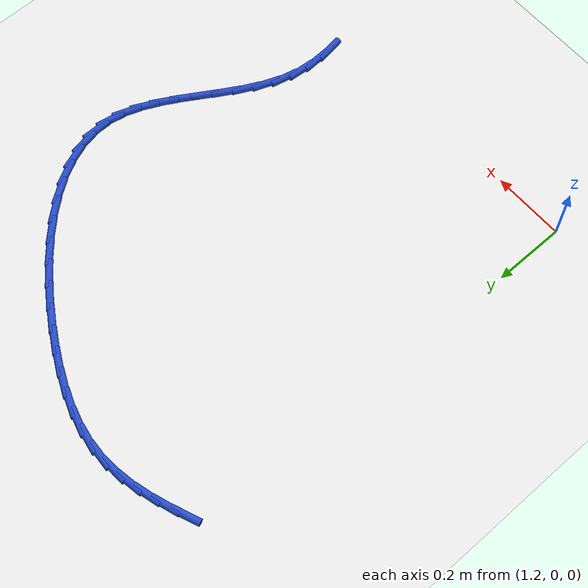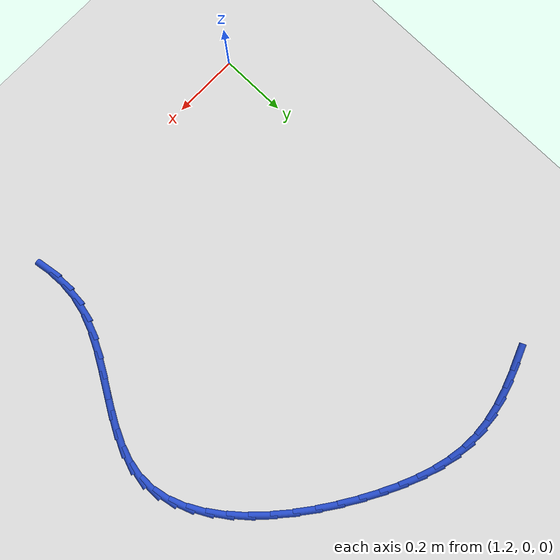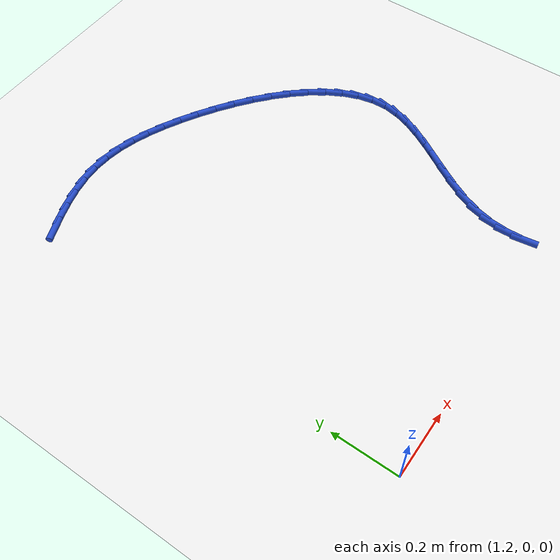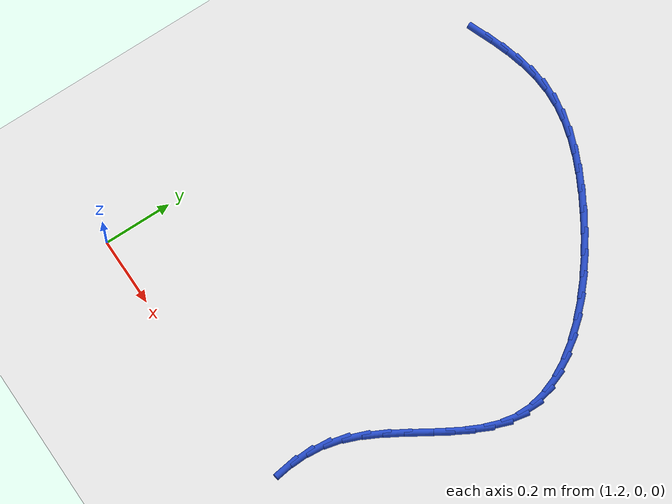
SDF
<sdf version="1.6">
 <world name="default">
  <model name="ground_plane">
   <static>1</static>
   <link name="link">
    <collision name="collision">
     <geometry><plane><normal>0 0 1</normal><size>100 100</size></plane></geometry>
     <surface><friction><ode><mu>100</mu><mu2>50</mu2></ode></friction></surface>
    </collision>
    <visual name="visual">
     <cast_shadows>0</cast_shadows>
     <geometry><plane><normal>0 0 1</normal><size>100 100</size></plane></geometry>
     <material>
      <script><uri>file://media/materials/scripts/gazebo.material</uri><name>Gazebo/WhiteGlow</name></script>
     </material>
    </visual>
   </link>
  </model>
  <model name="line">
   <link name="link_36">
    <pose>1.2572662843656537 1.18609397323883 0.01 0 1.57 0.37760422155665735</pose>
    <collision name="collision">
     <geometry><cylinder><radius>0.01</radius><length>0.08</length></cylinder></geometry>
    </collision>
    <visual name="visual">
     <material>
      <script><name>Gazebo/Blue</name><uri>file://media/materials/scripts/gazebo.material</uri></script>
     </material>
     <geometry><cylinder><radius>0.01</radius><length>0.08</length></cylinder></geometry>
    </visual>
   </link>
   <link name="link_37">
    <pose>1.3067236135898486 1.2057105993985886 0.01 0 1.57 0.32775156799154864</pose>
    <collision name="collision">
     <geometry><cylinder><radius>0.01</radius><length>0.08</length></cylinder></geometry>
    </collision>
    <visual name="visual">
     <material>
      <script><name>Gazebo/Blue</name><uri>file://media/materials/scripts/gazebo.material</uri></script>
     </material>
     <geometry><cylinder><radius>0.01</radius><length>0.08</length></cylinder></geometry>
    </visual>
   </link>
   <link name="link_38">
    <pose>1.3560260150493069 1.222474134287575 0.01 0 1.57 0.25872539393410193</pose>
    <collision name="collision">
     <geometry><cylinder><radius>0.01</radius><length>0.08</length></cylinder></geometry>
    </collision>
    <visual name="visual">
     <material>
      <script><name>Gazebo/Blue</name><uri>file://media/materials/scripts/gazebo.material</uri></script>
     </material>
     <geometry><cylinder><radius>0.01</radius><length>0.08</length></cylinder></geometry>
    </visual>
   </link>
   <link name="link_39">
    <pose>1.4052984876984786 1.2355144487831842 0.01 0 1.57 0.16946257647083465</pose>
    <collision name="collision">
     <geometry><cylinder><radius>0.01</radius><length>0.08</length></cylinder></geometry>
    </collision>
    <visual name="visual">
     <material>
      <script><name>Gazebo/Blue</name><uri>file://media/materials/scripts/gazebo.material</uri></script>
     </material>
     <geometry><cylinder><radius>0.01</radius><length>0.08</length></cylinder></geometry>
    </visual>
   </link>
   <link name="link_40">
    <pose>1.4546660304918162 1.2439614137628132 0.01 0 1.57 0.060093519521581526</pose>
    <collision name="collision">
     <geometry><cylinder><radius>0.01</radius><length>0.08</length></cylinder></geometry>
    </collision>
    <visual name="visual">
     <material>
      <script><name>Gazebo/Blue</name><uri>file://media/materials/scripts/gazebo.material</uri></script>
     </material>
     <geometry><cylinder><radius>0.01</radius><length>0.08</length></cylinder></geometry>
    </visual>
   </link>
   <link name="link_41">
    <pose>1.50425364238377 1.2469449001038577 0.01 0 1.57 -0.06376951316720172</pose>
    <collision name="collision">
     <geometry><cylinder><radius>0.01</radius><length>0.08</length></cylinder></geometry>
    </collision>
    <visual name="visual">
     <material>
      <script><name>Gazebo/Blue</name><uri>file://media/materials/scripts/gazebo.material</uri></script>
     </material>
     <geometry><cylinder><radius>0.01</radius><length>0.08</length></cylinder></geometry>
    </visual>
   </link>
   <link name="link_42">
    <pose>1.5541730609378048 1.2437572409872852 0.01 0 1.57 -0.17959205626005043</pose>
    <collision name="collision">
     <geometry><cylinder><radius>0.01</radius><length>0.08</length></cylinder></geometry>
    </collision>
    <visual name="visual">
     <material>
      <script><name>Gazebo/Blue</name><uri>file://media/materials/scripts/gazebo.material</uri></script>
     </material>
     <geometry><cylinder><radius>0.01</radius><length>0.08</length></cylinder></geometry>
    </visual>
   </link>
   <link name="link_43">
    <pose>1.6044595340750905 1.2346278269133066 0.01 0 1.57 -0.27888068944598643</pose>
    <collision name="collision">
     <geometry><cylinder><radius>0.01</radius><length>0.08</length></cylinder></geometry>
    </collision>
    <visual name="visual">
     <material>
      <script><name>Gazebo/Blue</name><uri>file://media/materials/scripts/gazebo.material</uri></script>
     </material>
     <geometry><cylinder><radius>0.01</radius><length>0.08</length></cylinder></geometry>
    </visual>
   </link>
   <link name="link_44">
    <pose>1.6551209444400943 1.220121294201809 0.01 0 1.57 -0.3618075823167382</pose>
    <collision name="collision">
     <geometry><cylinder><radius>0.01</radius><length>0.08</length></cylinder></geometry>
    </collision>
    <visual name="visual">
     <material>
      <script><name>Gazebo/Blue</name><uri>file://media/materials/scripts/gazebo.material</uri></script>
     </material>
     <geometry><cylinder><radius>0.01</radius><length>0.08</length></cylinder></geometry>
    </visual>
   </link>
   <link name="link_45">
    <pose>1.7061651401035685 1.2008027027274193 0.01 0 1.57 -0.4296223871402558</pose>
    <collision name="collision">
     <geometry><cylinder><radius>0.01</radius><length>0.08</length></cylinder></geometry>
    </collision>
    <visual name="visual">
     <material>
      <script><name>Gazebo/Blue</name><uri>file://media/materials/scripts/gazebo.material</uri></script>
     </material>
     <geometry><cylinder><radius>0.01</radius><length>0.08</length></cylinder></geometry>
    </visual>
   </link>
   <link name="link_46">
    <pose>1.7575999691362678 1.1772371123647654 0.01 0 1.57 -0.4839768215693797</pose>
    <collision name="collision">
     <geometry><cylinder><radius>0.01</radius><length>0.08</length></cylinder></geometry>
    </collision>
    <visual name="visual">
     <material>
      <script><name>Gazebo/Blue</name><uri>file://media/materials/scripts/gazebo.material</uri></script>
     </material>
     <geometry><cylinder><radius>0.01</radius><length>0.08</length></cylinder></geometry>
    </visual>
   </link>
   <link name="link_47">
    <pose>1.809433279608945 1.1499895829884748 0.01 0 1.57 -0.528381747543479</pose>
    <collision name="collision">
     <geometry><cylinder><radius>0.01</radius><length>0.08</length></cylinder></geometry>
    </collision>
    <visual name="visual">
     <material>
      <script><name>Gazebo/Blue</name><uri>file://media/materials/scripts/gazebo.material</uri></script>
     </material>
     <geometry><cylinder><radius>0.01</radius><length>0.08</length></cylinder></geometry>
    </visual>
   </link>
   <link name="link_48">
    <pose>1.8615339503997963 1.119576062675035 0.01 0 1.57 -0.5721277697215879</pose>
    <collision name="collision">
     <geometry><cylinder><radius>0.01</radius><length>0.08</length></cylinder></geometry>
    </collision>
    <visual name="visual">
     <material>
      <script><name>Gazebo/Blue</name><uri>file://media/materials/scripts/gazebo.material</uri></script>
     </material>
     <geometry><cylinder><radius>0.01</radius><length>0.08</length></cylinder></geometry>
    </visual>
   </link>
   <link name="link_49">
    <pose>1.91319366532953 1.0863085184125463 0.01 0 1.57 -0.6188107056609943</pose>
    <collision name="collision">
     <geometry><cylinder><radius>0.01</radius><length>0.08</length></cylinder></geometry>
    </collision>
    <visual name="visual">
     <material>
      <script><name>Gazebo/Blue</name><uri>file://media/materials/scripts/gazebo.material</uri></script>
     </material>
     <geometry><cylinder><radius>0.01</radius><length>0.08</length></cylinder></geometry>
    </visual>
   </link>
   <link name="link_50">
    <pose>1.9635542770698824 1.0504459667688884 0.01 0 1.57 -0.670117612487911</pose>
    <collision name="collision">
     <geometry><cylinder><radius>0.01</radius><length>0.08</length></cylinder></geometry>
    </collision>
    <visual name="visual">
     <material>
      <script><name>Gazebo/Blue</name><uri>file://media/materials/scripts/gazebo.material</uri></script>
     </material>
     <geometry><cylinder><radius>0.01</radius><length>0.08</length></cylinder></geometry>
    </visual>
   </link>
   <link name="link_51">
    <pose>2.0117576380077455 1.0122474242112784 0.01 0 1.57 -0.727981286906242</pose>
    <collision name="collision">
     <geometry><cylinder><radius>0.01</radius><length>0.08</length></cylinder></geometry>
    </collision>
    <visual name="visual">
     <material>
      <script><name>Gazebo/Blue</name><uri>file://media/materials/scripts/gazebo.material</uri></script>
     </material>
     <geometry><cylinder><radius>0.01</radius><length>0.08</length></cylinder></geometry>
    </visual>
   </link>
   <link name="link_52">
    <pose>2.056945600530009 0.9719719072069326 0.01 0 1.57 -0.7947382368862548</pose>
    <collision name="collision">
     <geometry><cylinder><radius>0.01</radius><length>0.08</length></cylinder></geometry>
    </collision>
    <visual name="visual">
     <material>
      <script><name>Gazebo/Blue</name><uri>file://media/materials/scripts/gazebo.material</uri></script>
     </material>
     <geometry><cylinder><radius>0.01</radius><length>0.08</length></cylinder></geometry>
    </visual>
   </link>
   <link name="link_53">
    <pose>2.098260017023563 0.9298784322230669 0.01 0 1.57 -0.8732833800559324</pose>
    <collision name="collision">
     <geometry><cylinder><radius>0.01</radius><length>0.08</length></cylinder></geometry>
    </collision>
    <visual name="visual">
     <material>
      <script><name>Gazebo/Blue</name><uri>file://media/materials/scripts/gazebo.material</uri></script>
     </material>
     <geometry><cylinder><radius>0.01</radius><length>0.08</length></cylinder></geometry>
    </visual>
   </link>
   <link name="link_54">
    <pose>2.1348427398753014 0.8862260157268989 0.01 0 1.57 -0.9671786636533485</pose>
    <collision name="collision">
     <geometry><cylinder><radius>0.01</radius><length>0.08</length></cylinder></geometry>
    </collision>
    <visual name="visual">
     <material>
      <script><name>Gazebo/Blue</name><uri>file://media/materials/scripts/gazebo.material</uri></script>
     </material>
     <geometry><cylinder><radius>0.01</radius><length>0.08</length></cylinder></geometry>
    </visual>
   </link>
   <link name="link_55">
    <pose>2.1658356214721133 0.8412736741856432 0.01 0 1.57 -1.0805824273977227</pose>
    <collision name="collision">
     <geometry><cylinder><radius>0.01</radius><length>0.08</length></cylinder></geometry>
    </collision>
    <visual name="visual">
     <material>
      <script><name>Gazebo/Blue</name><uri>file://media/materials/scripts/gazebo.material</uri></script>
     </material>
     <geometry><cylinder><radius>0.01</radius><length>0.08</length></cylinder></geometry>
    </visual>
   </link>
   <link name="link_56">
    <pose>2.1903805142008905 0.7952804240665182 0.01 0 1.57 -1.2176965936084658</pose>
    <collision name="collision">
     <geometry><cylinder><radius>0.01</radius><length>0.08</length></cylinder></geometry>
    </collision>
    <visual name="visual">
     <material>
      <script><name>Gazebo/Blue</name><uri>file://media/materials/scripts/gazebo.material</uri></script>
     </material>
     <geometry><cylinder><radius>0.01</radius><length>0.08</length></cylinder></geometry>
    </visual>
   </link>
   <link name="link_57">
    <pose>2.2076192704485234 0.7485052818367388 0.01 0 1.57 -1.3812423611241642</pose>
    <collision name="collision">
     <geometry><cylinder><radius>0.01</radius><length>0.08</length></cylinder></geometry>
    </collision>
    <visual name="visual">
     <material>
      <script><name>Gazebo/Blue</name><uri>file://media/materials/scripts/gazebo.material</uri></script>
     </material>
     <geometry><cylinder><radius>0.01</radius><length>0.08</length></cylinder></geometry>
    </visual>
   </link>
   <link name="link_58">
    <pose>2.2166937426019038 0.7012072639635223 0.01 0 1.57 -1.5697021642328135</pose>
    <collision name="collision">
     <geometry><cylinder><radius>0.01</radius><length>0.08</length></cylinder></geometry>
    </collision>
    <visual name="visual">
     <material>
      <script><name>Gazebo/Blue</name><uri>file://media/materials/scripts/gazebo.material</uri></script>
     </material>
     <geometry><cylinder><radius>0.01</radius><length>0.08</length></cylinder></geometry>
    </visual>
   </link>
   <link name="link_59">
    <pose>2.216745783047921 0.6536453869140842 0.01 0 1.57 1.3765695246528835</pose>
    <collision name="collision">
     <geometry><cylinder><radius>0.01</radius><length>0.08</length></cylinder></geometry>
    </collision>
    <visual name="visual">
     <material>
      <script><name>Gazebo/Blue</name><uri>file://media/materials/scripts/gazebo.material</uri></script>
     </material>
     <geometry><cylinder><radius>0.01</radius><length>0.08</length></cylinder></geometry>
    </visual>
   </link>
   <link name="link_60">
    <pose>2.207378923476059 0.6060269486554369 0.01 0 1.57 1.2223561097141546</pose>
    <collision name="collision">
     <geometry><cylinder><radius>0.01</radius><length>0.08</length></cylinder></geometry>
    </collision>
    <visual name="visual">
     <material>
      <script><name>Gazebo/Blue</name><uri>file://media/materials/scripts/gazebo.material</uri></script>
     </material>
     <geometry><cylinder><radius>0.01</radius><length>0.08</length></cylinder></geometry>
    </visual>
   </link>
   <link name="link_61">
    <pose>2.1900598966775893 0.5583505265859571 0.01 0 1.57 1.1165627376637237</pose>
    <collision name="collision">
     <geometry><cylinder><radius>0.01</radius><length>0.08</length></cylinder></geometry>
    </collision>
    <visual name="visual">
     <material>
      <script><name>Gazebo/Blue</name><uri>file://media/materials/scripts/gazebo.material</uri></script>
     </material>
     <geometry><cylinder><radius>0.01</radius><length>0.08</length></cylinder></geometry>
    </visual>
   </link>
   <link name="link_62">
    <pose>2.166725393409376 0.5105620522067429 0.01 0 1.57 1.0514826039585043</pose>
    <collision name="collision">
     <geometry><cylinder><radius>0.01</radius><length>0.08</length></cylinder></geometry>
    </collision>
    <visual name="visual">
     <material>
      <script><name>Gazebo/Blue</name><uri>file://media/materials/scripts/gazebo.material</uri></script>
     </material>
     <geometry><cylinder><radius>0.01</radius><length>0.08</length></cylinder></geometry>
    </visual>
   </link>
   <link name="link_63">
    <pose>2.1393121044403904 0.4626074570175358 0.01 0 1.57 1.0205071304001756</pose>
    <collision name="collision">
     <geometry><cylinder><radius>0.01</radius><length>0.08</length></cylinder></geometry>
    </collision>
    <visual name="visual">
     <material>
      <script><name>Gazebo/Blue</name><uri>file://media/materials/scripts/gazebo.material</uri></script>
     </material>
     <geometry><cylinder><radius>0.01</radius><length>0.08</length></cylinder></geometry>
    </visual>
   </link>
   <link name="link_64">
    <pose>2.109756720539605 0.41443267251807897 0.01 0 1.57 1.0199502787090715</pose>
    <collision name="collision">
     <geometry><cylinder><radius>0.01</radius><length>0.08</length></cylinder></geometry>
    </collision>
    <visual name="visual">
     <material>
      <script><name>Gazebo/Blue</name><uri>file://media/materials/scripts/gazebo.material</uri></script>
     </material>
     <geometry><cylinder><radius>0.01</radius><length>0.08</length></cylinder></geometry>
    </visual>
   </link>
   <link name="link_65">
    <pose>2.079995932475991 0.3659836302081138 0.01 0 1.57 1.0492314926855069</pose>
    <collision name="collision">
     <geometry><cylinder><radius>0.01</radius><length>0.08</length></cylinder></geometry>
    </collision>
    <visual name="visual">
     <material>
      <script><name>Gazebo/Blue</name><uri>file://media/materials/scripts/gazebo.material</uri></script>
     </material>
     <geometry><cylinder><radius>0.01</radius><length>0.08</length></cylinder></geometry>
    </visual>
   </link>
   <link name="link_66">
    <pose>2.0519664310185197 0.31720626158738197 0.01 0 1.57 1.1107084641364842</pose>
    <collision name="collision">
     <geometry><cylinder><radius>0.01</radius><length>0.08</length></cylinder></geometry>
    </collision>
    <visual name="visual">
     <material>
      <script><name>Gazebo/Blue</name><uri>file://media/materials/scripts/gazebo.material</uri></script>
     </material>
     <geometry><cylinder><radius>0.01</radius><length>0.08</length></cylinder></geometry>
    </visual>
   </link>
   <link name="link_67">
    <pose>2.0276049069361632 0.2680464981556266 0.01 0 1.57 1.2092308416880622</pose>
    <collision name="collision">
     <geometry><cylinder><radius>0.01</radius><length>0.08</length></cylinder></geometry>
    </collision>
    <visual name="visual">
     <material>
      <script><name>Gazebo/Blue</name><uri>file://media/materials/scripts/gazebo.material</uri></script>
     </material>
     <geometry><cylinder><radius>0.01</radius><length>0.08</length></cylinder></geometry>
    </visual>
   </link>
   <link name="link_68">
    <pose>2.008848050997894 0.21845027141258871 0.01 0 1.57 1.3478094952100241</pose>
    <collision name="collision">
     <geometry><cylinder><radius>0.01</radius><length>0.08</length></cylinder></geometry>
    </collision>
    <visual name="visual">
     <material>
      <script><name>Gazebo/Blue</name><uri>file://media/materials/scripts/gazebo.material</uri></script>
     </material>
     <geometry><cylinder><radius>0.01</radius><length>0.08</length></cylinder></geometry>
    </visual>
   </link>
   <link name="link_69">
    <pose>1.9974913631397733 0.1683673546811499 0.01 0 1.57 1.494268745782904</pose>
    <collision name="collision">
     <geometry><cylinder><radius>0.01</radius><length>0.08</length></cylinder></geometry>
    </collision>
    <visual name="visual">
     <material>
      <script><name>Gazebo/Blue</name><uri>file://media/materials/scripts/gazebo.material</uri></script>
     </material>
     <geometry><cylinder><radius>0.01</radius><length>0.08</length></cylinder></geometry>
    </visual>
   </link>
   <link name="link_70">
    <pose>1.9936135516059965 0.11779423543630574 0.01 0 1.57 -1.5211610270993388</pose>
    <collision name="collision">
     <geometry><cylinder><radius>0.01</radius><length>0.08</length></cylinder></geometry>
    </collision>
    <visual name="visual">
     <material>
      <script><name>Gazebo/Blue</name><uri>file://media/materials/scripts/gazebo.material</uri></script>
     </material>
     <geometry><cylinder><radius>0.01</radius><length>0.08</length></cylinder></geometry>
    </visual>
   </link>
   <link name="link_71">
    <pose>1.996148805807633 0.06675854367728853 0.01 0 1.57 -1.419224589580382</pose>
    <collision name="collision">
     <geometry><cylinder><radius>0.01</radius><length>0.08</length></cylinder></geometry>
    </collision>
    <visual name="visual">
     <material>
      <script><name>Gazebo/Blue</name><uri>file://media/materials/scripts/gazebo.material</uri></script>
     </material>
     <geometry><cylinder><radius>0.01</radius><length>0.08</length></cylinder></geometry>
    </visual>
   </link>
  </model>
 </world>
</sdf>
